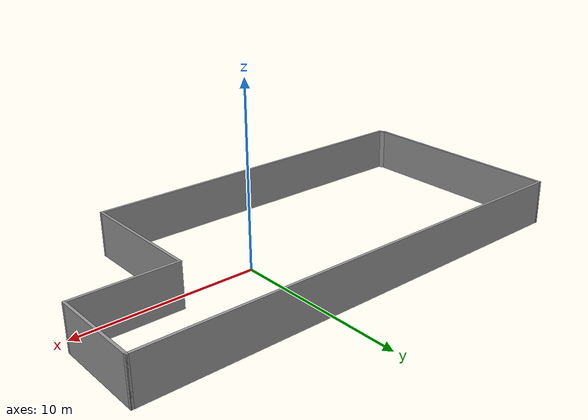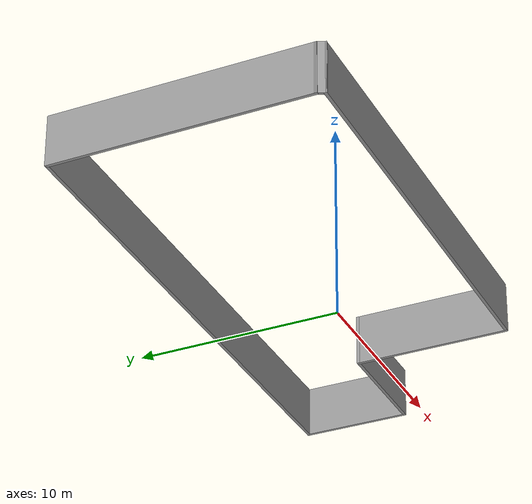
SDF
<?xml version='1.0'?>
<sdf version='1.6'>
  <model name='newbuilding'>
    <pose frame=''>-2.73996 -0.160566 0 0 -0 0</pose>
    <link name='Wall_0'>
      <collision name='Wall_0_Collision'>
        <geometry>
          <box>
            <size>12.25 0.15 2.5</size>
          </box>
        </geometry>
        <pose frame=''>0 0 1.25 0 -0 0</pose>
      </collision>
      <visual name='Wall_0_Visual'>
        <pose frame=''>0 0 1.25 0 -0 0</pose>
        <geometry>
          <box>
            <size>12.25 0.15 2.5</size>
          </box>
        </geometry>
        <material>
          <script>
            <uri>file://media/materials/scripts/gazebo.material</uri>
            <name>Gazebo/Grey</name>
          </script>
          <ambient>1 1 1 1</ambient>
        </material>
        <meta>
          <layer>0</layer>
        </meta>
      </visual>
      <pose frame=''>-13.0383 0.18674 0 0 -0 1.5708</pose>
    </link>
    <link name='Wall_1'>
      <collision name='Wall_1_Collision'>
        <geometry>
          <box>
            <size>26.25 0.15 2.5</size>
          </box>
        </geometry>
        <pose frame=''>0 0 1.25 0 -0 0</pose>
      </collision>
      <visual name='Wall_1_Visual'>
        <pose frame=''>0 0 1.25 0 -0 0</pose>
        <geometry>
          <box>
            <size>26.25 0.15 2.5</size>
          </box>
        </geometry>
        <material>
          <script>
            <uri>file://media/materials/scripts/gazebo.material</uri>
            <name>Gazebo/Grey</name>
          </script>
          <ambient>1 1 1 1</ambient>
        </material>
        <meta>
          <layer>0</layer>
        </meta>
      </visual>
      <pose frame=''>0.011739 6.23674 0 0 -0 0</pose>
    </link>
    <link name='Wall_2'>
      <collision name='Wall_2_Collision'>
        <geometry>
          <box>
            <size>5.25 0.15 2.5</size>
          </box>
        </geometry>
        <pose frame=''>0 0 1.25 0 -0 0</pose>
      </collision>
      <visual name='Wall_2_Visual'>
        <pose frame=''>0 0 1.25 0 -0 0</pose>
        <geometry>
          <box>
            <size>5.25 0.15 2.5</size>
          </box>
        </geometry>
        <material>
          <script>
            <uri>file://media/materials/scripts/gazebo.material</uri>
            <name>Gazebo/Grey</name>
          </script>
          <ambient>1 1 1 1</ambient>
        </material>
        <meta>
          <layer>0</layer>
        </meta>
      </visual>
      <pose frame=''>13.0617 3.68674 0 0 -0 -1.5708</pose>
    </link>
    <link name='Wall_3'>
      <collision name='Wall_3_Collision'>
        <geometry>
          <box>
            <size>5.75 0.15 2.5</size>
          </box>
        </geometry>
        <pose frame=''>0 0 1.25 0 -0 0</pose>
      </collision>
      <visual name='Wall_3_Visual'>
        <pose frame=''>0 0 1.25 0 -0 0</pose>
        <geometry>
          <box>
            <size>5.75 0.15 2.5</size>
          </box>
        </geometry>
        <material>
          <script>
            <uri>file://media/materials/scripts/gazebo.material</uri>
            <name>Gazebo/Grey</name>
          </script>
          <ambient>1 1 1 1</ambient>
        </material>
        <meta>
          <layer>0</layer>
        </meta>
      </visual>
      <pose frame=''>10.2617 1.13674 0 0 -0 3.14159</pose>
    </link>
    <link name='Wall_4'>
      <collision name='Wall_4_Collision'>
        <geometry>
          <box>
            <size>7.5 0.15 2.5</size>
          </box>
        </geometry>
        <pose frame=''>0 0 1.25 0 -0 0</pose>
      </collision>
      <visual name='Wall_4_Visual'>
        <pose frame=''>0 0 1.25 0 -0 0</pose>
        <geometry>
          <box>
            <size>7.5 0.15 2.5</size>
          </box>
        </geometry>
        <material>
          <script>
            <uri>file://media/materials/scripts/gazebo.material</uri>
            <name>Gazebo/Grey</name>
          </script>
          <ambient>1 1 1 1</ambient>
        </material>
        <meta>
          <layer>0</layer>
        </meta>
      </visual>
      <pose frame=''>7.46174 -2.53826 0 0 -0 -1.5708</pose>
    </link>
    <link name='Wall_5'>
      <collision name='Wall_5_Collision'>
        <geometry>
          <box>
            <size>20.5 0.15 2.5</size>
          </box>
        </geometry>
        <pose frame=''>0 0 1.25 0 -0 0</pose>
      </collision>
      <visual name='Wall_5_Visual'>
        <pose frame=''>0 0 1.25 0 -0 0</pose>
        <geometry>
          <box>
            <size>20.5 0.15 2.5</size>
          </box>
        </geometry>
        <material>
          <script>
            <uri>file://media/materials/scripts/gazebo.material</uri>
            <name>Gazebo/Grey</name>
          </script>
          <ambient>1 1 1 1</ambient>
        </material>
        <meta>
          <layer>0</layer>
        </meta>
      </visual>
      <pose frame=''>-2.71326 -6.21326 0 0 -0 3.14159</pose>
    </link>
    <link name='Wall_6'>
      <collision name='Wall_6_Collision'>
        <geometry>
          <box>
            <size>0.530789 0.15 2.5</size>
          </box>
        </geometry>
        <pose frame=''>0 0 1.25 0 -0 0</pose>
      </collision>
      <visual name='Wall_6_Visual'>
        <pose frame=''>0 0 1.25 0 -0 0</pose>
        <geometry>
          <box>
            <size>0.530789 0.15 2.5</size>
          </box>
        </geometry>
        <material>
          <script>
            <uri>file://media/materials/scripts/gazebo.material</uri>
            <name>Gazebo/Grey</name>
          </script>
          <ambient>1 1 1 1</ambient>
        </material>
        <meta>
          <layer>0</layer>
        </meta>
      </visual>
      <pose frame=''>-12.9633 -6.03826 0 0 -0 1.97569</pose>
    </link>
    <static>1</static>
  </model>
</sdf>
